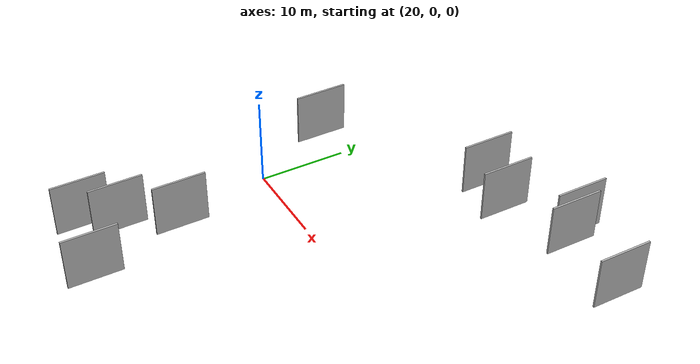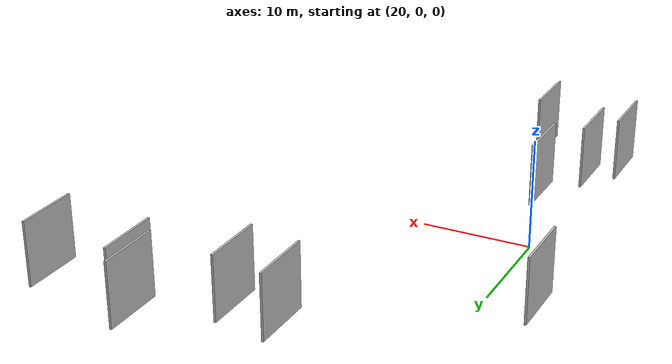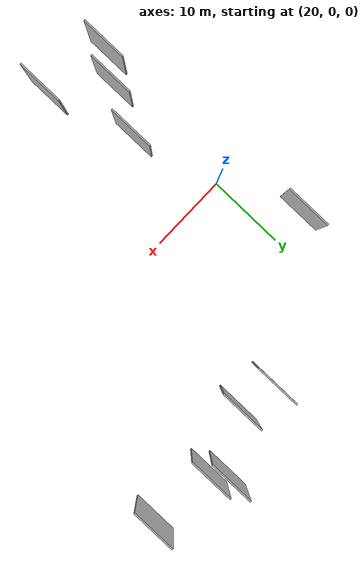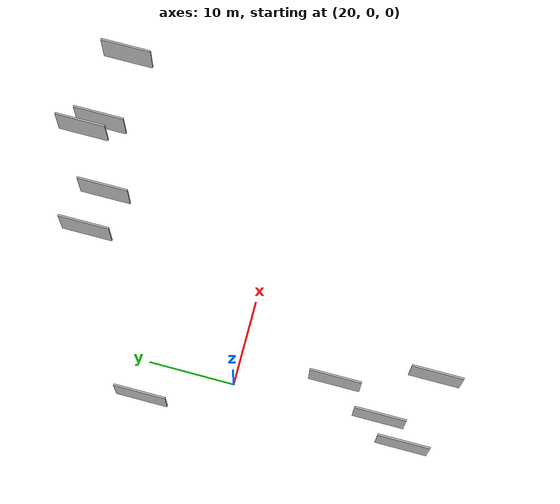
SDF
<sdf version="1.6">
 <world name="default">
  <scene>
   <sky><clouds><speed>12</speed></clouds></sky>
   <ambient>0.4 0.4 0.4 1</ambient>
   <background>0.7 0.7 0.7 1</background>
   <shadows>1</shadows>
  </scene>
  <gravity>0 0 -9.8066</gravity>
  <magnetic_field>6e-06 2.3e-05 -4.2e-05</magnetic_field>
  <physics default="0" name="default_physics" type="ode">
   <ode>
    <solver>
     <type>quick</type>
     <iters>10</iters>
     <sor>1.0</sor>
     <use_dynamic_moi_rescaling>0</use_dynamic_moi_rescaling>
    </solver>
    <constraints>
     <cfm>0</cfm>
     <erp>0.2</erp>
     <contact_max_correcting_vel>100</contact_max_correcting_vel>
     <contact_surface_layer>0.001</contact_surface_layer>
    </constraints>
   </ode>
   <max_step_size>0.004</max_step_size>
   <real_time_factor>1</real_time_factor>
   <real_time_update_rate>250</real_time_update_rate>
  </physics>
  <light name="sun" type="directional">
   <pose>0 0 10 0 0 0</pose>
   <diffuse>0.8 0.8 0.8 1</diffuse>
   <specular>0.2 0.2 0.2 1</specular>
   <attenuation>
    <range>1000</range>
    <constant>0.9</constant>
    <linear>0.01</linear>
    <quadratic>0.001</quadratic>
   </attenuation>
   <direction>-0.5 0.1 -0.9</direction>
  </light>
  <model name="grey_wall_1">
   <static>1</static>
   <pose>45.6147 23.0208 0.0 0.000000 0.000000 1.570796</pose>
   <link name="link">
    <pose>0 0 3.00 0 0 0</pose>
    <collision name="collision"><geometry><box><size>6.00 0.2 6.00</size></box></geometry></collision>
    <visual name="visual">
     <cast_shadows>0</cast_shadows>
     <geometry><box><size>6.00 0.2 6.00</size></box></geometry>
     <material>
      <script>
       <uri>model://HANNAS_wall/materials/scripts</uri>
       <uri>model://HANNAS_wall/materials/textures</uri>
       <name>vrc/HANNAS_wall</name>
      </script>
     </material>
    </visual>
   </link>
  </model>
  <model name="grey_wall_2">
   <static>1</static>
   <pose>44.2480 24.8452 0.0 0.000000 0.000000 1.570796</pose>
   <link name="link">
    <pose>0 0 3.00 0 0 0</pose>
    <collision name="collision"><geometry><box><size>6.00 0.2 6.00</size></box></geometry></collision>
    <visual name="visual">
     <cast_shadows>0</cast_shadows>
     <geometry><box><size>6.00 0.2 6.00</size></box></geometry>
     <material>
      <script>
       <uri>model://HANNAS_wall/materials/scripts</uri>
       <uri>model://HANNAS_wall/materials/textures</uri>
       <name>vrc/HANNAS_wall</name>
      </script>
     </material>
    </visual>
   </link>
  </model>
  <model name="grey_wall_3">
   <static>1</static>
   <pose>20.1342 -16.9005 0.0 0.000000 0.000000 1.570796</pose>
   <link name="link">
    <pose>0 0 3.00 0 0 0</pose>
    <collision name="collision"><geometry><box><size>6.00 0.2 6.00</size></box></geometry></collision>
    <visual name="visual">
     <cast_shadows>0</cast_shadows>
     <geometry><box><size>6.00 0.2 6.00</size></box></geometry>
     <material>
      <script>
       <uri>model://HANNAS_wall/materials/scripts</uri>
       <uri>model://HANNAS_wall/materials/textures</uri>
       <name>vrc/HANNAS_wall</name>
      </script>
     </material>
    </visual>
   </link>
  </model>
  <model name="grey_wall_4">
   <static>1</static>
   <pose>32.7393 21.1216 0.0 0.000000 0.000000 1.570796</pose>
   <link name="link">
    <pose>0 0 3.00 0 0 0</pose>
    <collision name="collision"><geometry><box><size>6.00 0.2 6.00</size></box></geometry></collision>
    <visual name="visual">
     <cast_shadows>0</cast_shadows>
     <geometry><box><size>6.00 0.2 6.00</size></box></geometry>
     <material>
      <script>
       <uri>model://HANNAS_wall/materials/scripts</uri>
       <uri>model://HANNAS_wall/materials/textures</uri>
       <name>vrc/HANNAS_wall</name>
      </script>
     </material>
    </visual>
   </link>
  </model>
  <model name="grey_wall_5">
   <static>1</static>
   <pose>26.3421 -21.9788 0.0 0.000000 0.000000 1.570796</pose>
   <link name="link">
    <pose>0 0 3.00 0 0 0</pose>
    <collision name="collision"><geometry><box><size>6.00 0.2 6.00</size></box></geometry></collision>
    <visual name="visual">
     <cast_shadows>0</cast_shadows>
     <geometry><box><size>6.00 0.2 6.00</size></box></geometry>
     <material>
      <script>
       <uri>model://HANNAS_wall/materials/scripts</uri>
       <uri>model://HANNAS_wall/materials/textures</uri>
       <name>vrc/HANNAS_wall</name>
      </script>
     </material>
    </visual>
   </link>
  </model>
  <model name="grey_wall_6">
   <static>1</static>
   <pose>54.2373 22.1915 0.0 0.000000 0.000000 1.570796</pose>
   <link name="link">
    <pose>0 0 3.00 0 0 0</pose>
    <collision name="collision"><geometry><box><size>6.00 0.2 6.00</size></box></geometry></collision>
    <visual name="visual">
     <cast_shadows>0</cast_shadows>
     <geometry><box><size>6.00 0.2 6.00</size></box></geometry>
     <material>
      <script>
       <uri>model://HANNAS_wall/materials/scripts</uri>
       <uri>model://HANNAS_wall/materials/textures</uri>
       <name>vrc/HANNAS_wall</name>
      </script>
     </material>
    </visual>
   </link>
  </model>
  <model name="grey_wall_7">
   <static>1</static>
   <pose>15.6391 9.7173 0.0 0.000000 0.000000 1.570796</pose>
   <link name="link">
    <pose>0 0 3.00 0 0 0</pose>
    <collision name="collision"><geometry><box><size>6.00 0.2 6.00</size></box></geometry></collision>
    <visual name="visual">
     <cast_shadows>0</cast_shadows>
     <geometry><box><size>6.00 0.2 6.00</size></box></geometry>
     <material>
      <script>
       <uri>model://HANNAS_wall/materials/scripts</uri>
       <uri>model://HANNAS_wall/materials/textures</uri>
       <name>vrc/HANNAS_wall</name>
      </script>
     </material>
    </visual>
   </link>
  </model>
  <model name="grey_wall_8">
   <static>1</static>
   <pose>37.5646 20.2700 0.0 0.000000 0.000000 1.570796</pose>
   <link name="link">
    <pose>0 0 3.00 0 0 0</pose>
    <collision name="collision"><geometry><box><size>6.00 0.2 6.00</size></box></geometry></collision>
    <visual name="visual">
     <cast_shadows>0</cast_shadows>
     <geometry><box><size>6.00 0.2 6.00</size></box></geometry>
     <material>
      <script>
       <uri>model://HANNAS_wall/materials/scripts</uri>
       <uri>model://HANNAS_wall/materials/textures</uri>
       <name>vrc/HANNAS_wall</name>
      </script>
     </material>
    </visual>
   </link>
  </model>
  <model name="grey_wall_9">
   <static>1</static>
   <pose>22.9764 -11.0154 0.0 0.000000 0.000000 1.570796</pose>
   <link name="link">
    <pose>0 0 3.00 0 0 0</pose>
    <collision name="collision"><geometry><box><size>6.00 0.2 6.00</size></box></geometry></collision>
    <visual name="visual">
     <cast_shadows>0</cast_shadows>
     <geometry><box><size>6.00 0.2 6.00</size></box></geometry>
     <material>
      <script>
       <uri>model://HANNAS_wall/materials/scripts</uri>
       <uri>model://HANNAS_wall/materials/textures</uri>
       <name>vrc/HANNAS_wall</name>
      </script>
     </material>
    </visual>
   </link>
  </model>
  <model name="grey_wall_10">
   <static>1</static>
   <pose>17.8140 -20.1693 0.0 0.000000 0.000000 1.570796</pose>
   <link name="link">
    <pose>0 0 3.00 0 0 0</pose>
    <collision name="collision"><geometry><box><size>6.00 0.2 6.00</size></box></geometry></collision>
    <visual name="visual">
     <cast_shadows>0</cast_shadows>
     <geometry><box><size>6.00 0.2 6.00</size></box></geometry>
     <material>
      <script>
       <uri>model://HANNAS_wall/materials/scripts</uri>
       <uri>model://HANNAS_wall/materials/textures</uri>
       <name>vrc/HANNAS_wall</name>
      </script>
     </material>
    </visual>
   </link>
  </model>
 </world>
</sdf>
